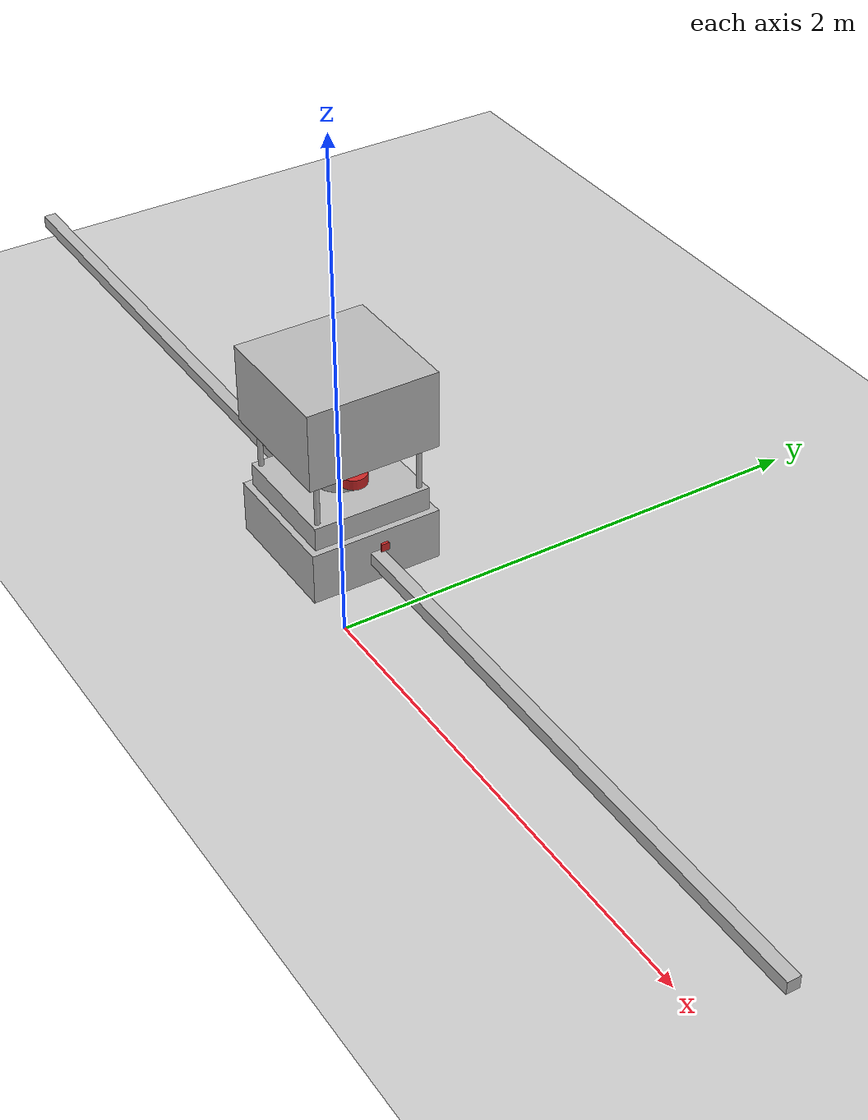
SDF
<sdf version="1.7">
 <world name="default">
  <light name="sun" type="directional">
   <pose>0 0 10 0 -0 0</pose>
   <diffuse>0.8 0.8 0.8 1</diffuse>
   <specular>0.2 0.2 0.2 1</specular>
   <attenuation>
    <range>1000</range>
    <constant>0.9</constant>
    <linear>0.01</linear>
    <quadratic>0.001</quadratic>
   </attenuation>
   <direction>-0.5 0.1 -0.9</direction>
   <spot><inner_angle>0</inner_angle><outer_angle>0</outer_angle><falloff>0</falloff></spot>
  </light>
  <model name="ground_plane">
   <static>1</static>
   <link name="link">
    <collision name="collision">
     <geometry><plane><normal>0 0 1</normal><size>100 100</size></plane></geometry>
     <surface>
      <contact><collide_bitmask>65535</collide_bitmask></contact>
      <friction><ode><mu>100</mu><mu2>50</mu2></ode></friction>
     </surface>
    </collision>
    <visual name="visual">
     <cast_shadows>0</cast_shadows>
     <geometry><plane><normal>0 0 1</normal><size>100 100</size></plane></geometry>
     <material>
      <script><uri>file://media/materials/scripts/gazebo.material</uri><name>Gazebo/Grey</name></script>
     </material>
    </visual>
   </link>
  </model>
  <gravity>0 0 -9.8</gravity>
  <magnetic_field>6e-06 2.3e-05 -4.2e-05</magnetic_field>
  <atmosphere type="adiabatic"/>
  <physics type="ode">
   <max_step_size>0.001</max_step_size>
   <real_time_factor>1</real_time_factor>
   <real_time_update_rate>1000</real_time_update_rate>
  </physics>
  <scene><ambient>0.4 0.4 0.4 1</ambient><background>0.7 0.7 0.7 1</background><shadows>1</shadows></scene>
  <audio><device>default</device></audio>
  <spherical_coordinates>
   <surface_model>EARTH_WGS84</surface_model>
   <latitude_deg>0</latitude_deg>
   <longitude_deg>0</longitude_deg>
   <elevation>0</elevation>
   <heading_deg>0</heading_deg>
  </spherical_coordinates>
  <model name="cart">
   <joint name="world_to_base" type="fixed">
    <pose relative_to="__model__">0 0 0.5 0 -0 0</pose>
    <parent>world</parent>
    <child>slideBar</child>
   </joint>
   <link name="slideBar">
    <pose relative_to="world_to_base">0 0 0 0 -0 0</pose>
    <inertial>
     <mass>100</mass>
     <inertia><ixx>1</ixx><ixy>0</ixy><ixz>0</ixz><iyy>1</iyy><iyz>0</iyz><izz>1</izz></inertia>
    </inertial>
    <visual name="slideBar_visual"><geometry><box><size>5 0.05 0.05</size></box></geometry></visual>
   </link>
   <joint name="slider_to_cart" type="prismatic">
    <pose relative_to="slideBar">0 0 0 0 -0 0</pose>
    <parent>slideBar</parent>
    <child>cart</child>
    <axis>
     <xyz>1 0 0</xyz>
     <limit><lower>-2.5</lower><upper>2.5</upper><effort>1000</effort><velocity>30</velocity></limit>
     <dynamics>
      <damping>0</damping>
      <friction>0</friction>
      <spring_reference>0</spring_reference>
      <spring_stiffness>0</spring_stiffness>
     </dynamics>
    </axis>
   </joint>
   <link name="cart">
    <pose relative_to="slider_to_cart">0 0 0 0 -0 0</pose>
    <inertial>
     <pose>0.002632 0 0.203026 0 -0 0</pose>
     <mass>3.8</mass>
     <inertia>
      <ixx>1.76314</ixx>
      <ixy>0</ixy>
      <ixz>-0.000419737</ixz>
      <iyy>1.76411</iyy>
      <iyz>0</iyz>
      <izz>1.67597</izz>
     </inertia>
    </inertial>
    <collision name="cart_fixed_joint_lump__laser_frame_collision">
     <pose>0.1 0 0.245 0 -0 0</pose>
     <geometry><cylinder><length>0.04</length><radius>0.05</radius></cylinder></geometry>
    </collision>
    <visual name="cart_visual"><geometry><box><size>0.5 0.5 0.2</size></box></geometry></visual>
    <visual name="cart_fixed_joint_lump__camera_link_visual_1">
     <pose>0.305 0 0.08 0 -0 0</pose>
     <geometry><box><size>0.01 0.03 0.03</size></box></geometry>
     <material>
      <script><name>Gazebo/Red</name><uri>file://media/materials/scripts/gazebo.material</uri></script>
     </material>
    </visual>
    <visual name="cart_fixed_joint_lump__computer_visual_2">
     <pose>0 0 0.14 0 -0 0</pose>
     <geometry><box><size>0.45 0.45 0.1</size></box></geometry>
    </visual>
    <visual name="cart_fixed_joint_lump__lidar_visual_3">
     <pose>0 0 0.25 0 -0 0</pose>
     <geometry><cylinder><length>0.2</length><radius>0.1</radius></cylinder></geometry>
    </visual>
    <visual name="cart_fixed_joint_lump__support1_visual_4">
     <pose>0.2 0.2 0.28 0 -0 0</pose>
     <geometry><cylinder><length>0.25</length><radius>0.01</radius></cylinder></geometry>
    </visual>
    <visual name="cart_fixed_joint_lump__support2_visual_5">
     <pose>0.2 -0.2 0.28 0 -0 0</pose>
     <geometry><cylinder><length>0.25</length><radius>0.01</radius></cylinder></geometry>
    </visual>
    <visual name="cart_fixed_joint_lump__support3_visual_6">
     <pose>-0.2 0.2 0.28 0 -0 0</pose>
     <geometry><cylinder><length>0.25</length><radius>0.01</radius></cylinder></geometry>
    </visual>
    <visual name="cart_fixed_joint_lump__support4_visual_7">
     <pose>-0.2 -0.2 0.28 0 -0 0</pose>
     <geometry><cylinder><length>0.25</length><radius>0.01</radius></cylinder></geometry>
    </visual>
    <visual name="cart_fixed_joint_lump__water_tank_visual_8">
     <pose>0 0 0.52 0 -0 0</pose>
     <geometry><box><size>0.5 0.5 0.3</size></box></geometry>
    </visual>
    <visual name="cart_fixed_joint_lump__laser_frame_visual_9">
     <pose>0.1 0 0.245 0 -0 0</pose>
     <geometry><cylinder><length>0.04</length><radius>0.05</radius></cylinder></geometry>
     <material>
      <script><name>Gazebo/Red</name><uri>file://media/materials/scripts/gazebo.material</uri></script>
     </material>
    </visual>
    <sensor name="camera" type="camera">
     <visualize>1</visualize>
     <update_rate>10</update_rate>
     <camera>
      <horizontal_fov>1.089</horizontal_fov>
      <image><format>R8G8B8</format><width>640</width><height>480</height></image>
      <clip><near>0.05</near><far>8</far></clip>
     </camera>
     <plugin name="camera_controller" filename="libgazebo_ros_camera.so">
      <cameraName>camera_link</cameraName>
      <imageTopicName>image_raw</imageTopicName>
      <cameraInfoTopicName>camera_info</cameraInfoTopicName>
      <frame_name>camera_link_optical</frame_name>
     </plugin>
     <pose>0.305 0 0.08 0 -0 0</pose>
    </sensor>
    <sensor name="laser" type="ray">
     <visualize>0</visualize>
     <update_rate>10</update_rate>
     <ray>
      <scan>
       <horizontal>
        <samples>360</samples>
        <min_angle>-3.14</min_angle>
        <max_angle>3.14</max_angle>
        <resolution>1</resolution>
       </horizontal>
       <vertical><samples>1</samples><min_angle>0</min_angle><max_angle>0</max_angle></vertical>
      </scan>
      <range><min>0.3</min><max>12</max></range>
     </ray>
     <plugin name="laser_controller" filename="libgazebo_ros_ray_sensor.so">
      <ros><argument>~/out:=scan</argument></ros>
      <output_type>sensor_msgs/LaserScan</output_type>
      <frame_name>laser_frame</frame_name>
     </plugin>
     <pose>0.1 0 0.245 0 -0 0</pose>
    </sensor>
   </link>
   <static>0</static>
   <plugin name="gazebo_ros2_control" filename="libgazebo_ros2_control.so">
    <parameters>/home/dev/ros2_ws/install/gazebo_ros2_control_demos/share/gazebo_ros2_control_demos/config/cart_controller.yaml</parameters>
   </plugin>
  </model>
  <light name="sun" type="directional">
   <pose>-3.2273 -2.68963 10 0 -0 0</pose>
   <diffuse>0.8 0.8 0.8 1</diffuse>
   <specular>0.2 0.2 0.2 1</specular>
   <attenuation>
    <range>1000</range>
    <constant>0.9</constant>
    <linear>0.01</linear>
    <quadratic>0.001</quadratic>
   </attenuation>
   <direction>-0.5 0.1 -0.9</direction>
  </light>
  <model name="test"><pose>4.85826 -3.37469 0 0 -0 0</pose></model>
 </world>
</sdf>
